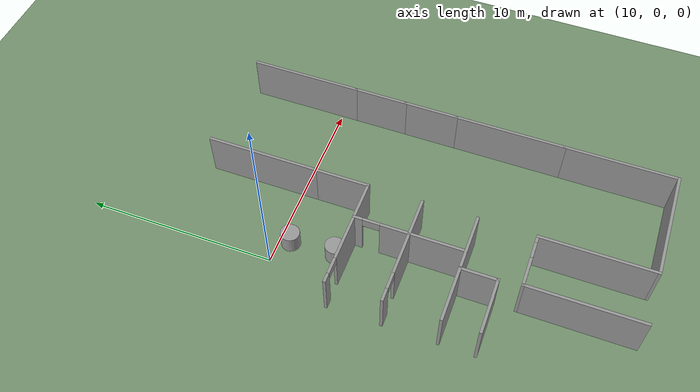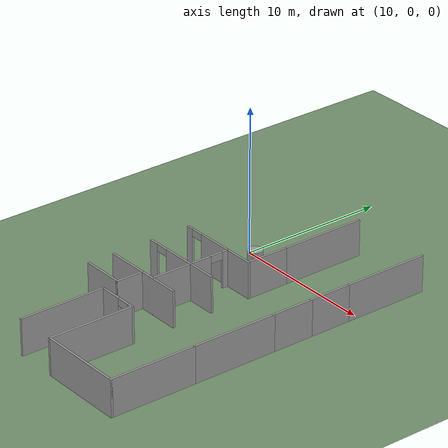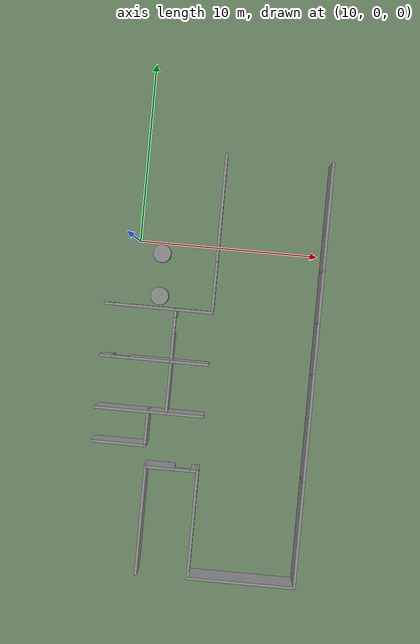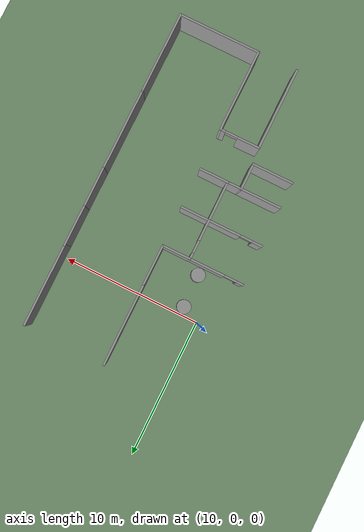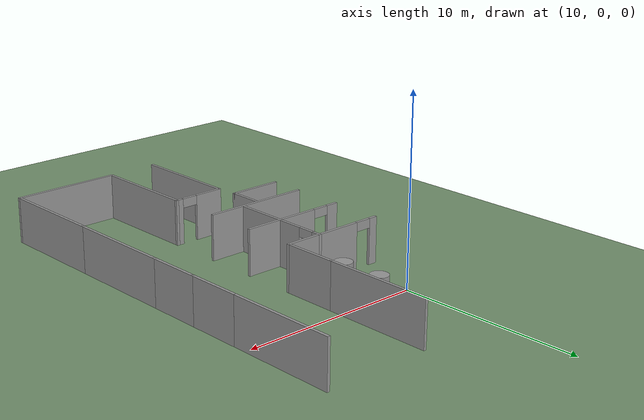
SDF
<sdf version="1.7">
 <world name="default">
  <model name="ground_plane">
   <static>1</static>
   <link name="link">
    <collision name="collision">
     <geometry><plane><normal>0 0 1</normal><size>600 600</size></plane></geometry>
     <surface>
      <contact><collide_bitmask>65535</collide_bitmask></contact>
      <friction><ode><mu>100</mu><mu2>50</mu2></ode></friction>
     </surface>
    </collision>
    <visual name="visual">
     <cast_shadows>0</cast_shadows>
     <geometry><plane><normal>0 0 1</normal><size>100 100</size></plane></geometry>
     <material><ambient>0.45 0.57 0.43 1</ambient><diffuse>0.45 0.57 0.43 1</diffuse></material>
    </visual>
   </link>
  </model>
  <model name="myhal_V3_2">
   <link name="Wall_326">
    <pose>20.475 0 0 0 0 -1.5708</pose>
    <visual name="Wall_326_Visual">
     <pose>0 0 1.25 0 -0 0</pose>
     <geometry><box><size>6 0.15 2.5</size></box></geometry>
     <material>
      <script><uri>file://media/materials/scripts/gazebo.material</uri><name>Gazebo/Grey</name></script>
      <ambient>1 1 1 1</ambient>
      <shader type="pixel"/>
     </material>
     <meta><layer>0</layer></meta>
    </visual>
    <collision name="Wall_326_Collision">
     <pose>0 0 1.25 0 -0 0</pose>
     <geometry><box><size>6 0.15 2.5</size></box></geometry>
     <surface>
      <friction>
       <ode><mu>1</mu><mu2>1</mu2><fdir1>0 0 0</fdir1><slip1>0</slip1><slip2>0</slip2></ode>
       <torsional>
        <coefficient>1</coefficient>
        <patch_radius>0</patch_radius>
        <surface_radius>0</surface_radius>
        <use_patch_radius>1</use_patch_radius>
        <ode><slip>0</slip></ode>
       </torsional>
      </friction>
      <bounce><restitution_coefficient>0</restitution_coefficient><threshold>1e+06</threshold></bounce>
      <contact>
       <collide_without_contact>0</collide_without_contact>
       <collide_without_contact_bitmask>1</collide_without_contact_bitmask>
       <collide_bitmask>1</collide_bitmask>
       <ode>
        <soft_cfm>0</soft_cfm>
        <soft_erp>0.2</soft_erp>
        <kp>1e+13</kp>
        <kd>1</kd>
        <max_vel>0.01</max_vel>
        <min_depth>0</min_depth>
       </ode>
       <bullet>
        <split_impulse>1</split_impulse>
        <split_impulse_penetration_threshold>-0.01</split_impulse_penetration_threshold>
        <soft_cfm>0</soft_cfm>
        <soft_erp>0.2</soft_erp>
        <kp>1e+13</kp>
        <kd>1</kd>
       </bullet>
      </contact>
     </surface>
    </collision>
   </link>
   <link name="Wall_327">
    <pose>20.475 -4.35 0 0 0 -1.5708</pose>
    <visual name="Wall_327_Visual">
     <pose>0 0 1.25 0 -0 0</pose>
     <geometry><box><size>3 0.15 2.5</size></box></geometry>
     <material>
      <script><uri>file://media/materials/scripts/gazebo.material</uri><name>Gazebo/Grey</name></script>
      <ambient>1 1 1 1</ambient>
      <shader type="pixel"/>
     </material>
     <meta><layer>0</layer></meta>
    </visual>
    <collision name="Wall_327_Collision">
     <pose>0 0 1.25 0 -0 0</pose>
     <geometry><box><size>3 0.15 2.5</size></box></geometry>
     <surface>
      <friction>
       <ode><mu>1</mu><mu2>1</mu2><fdir1>0 0 0</fdir1><slip1>0</slip1><slip2>0</slip2></ode>
       <torsional>
        <coefficient>1</coefficient>
        <patch_radius>0</patch_radius>
        <surface_radius>0</surface_radius>
        <use_patch_radius>1</use_patch_radius>
        <ode><slip>0</slip></ode>
       </torsional>
      </friction>
      <bounce><restitution_coefficient>0</restitution_coefficient><threshold>1e+06</threshold></bounce>
      <contact>
       <collide_without_contact>0</collide_without_contact>
       <collide_without_contact_bitmask>1</collide_without_contact_bitmask>
       <collide_bitmask>1</collide_bitmask>
       <ode>
        <soft_cfm>0</soft_cfm>
        <soft_erp>0.2</soft_erp>
        <kp>1e+13</kp>
        <kd>1</kd>
        <max_vel>0.01</max_vel>
        <min_depth>0</min_depth>
       </ode>
       <bullet>
        <split_impulse>1</split_impulse>
        <split_impulse_penetration_threshold>-0.01</split_impulse_penetration_threshold>
        <soft_cfm>0</soft_cfm>
        <soft_erp>0.2</soft_erp>
        <kp>1e+13</kp>
        <kd>1</kd>
       </bullet>
      </contact>
     </surface>
    </collision>
   </link>
   <link name="Wall_328">
    <pose>20.475 -7.2 0 0 0 -1.5708</pose>
    <visual name="Wall_328_Visual">
     <pose>0 0 1.25 0 -0 0</pose>
     <geometry><box><size>3 0.15 2.5</size></box></geometry>
     <material>
      <script><uri>file://media/materials/scripts/gazebo.material</uri><name>Gazebo/Grey</name></script>
      <ambient>1 1 1 1</ambient>
      <shader type="pixel"/>
     </material>
     <meta><layer>0</layer></meta>
    </visual>
    <collision name="Wall_328_Collision">
     <pose>0 0 1.25 0 -0 0</pose>
     <geometry><box><size>3 0.15 2.5</size></box></geometry>
     <surface>
      <friction>
       <ode><mu>1</mu><mu2>1</mu2><fdir1>0 0 0</fdir1><slip1>0</slip1><slip2>0</slip2></ode>
       <torsional>
        <coefficient>1</coefficient>
        <patch_radius>0</patch_radius>
        <surface_radius>0</surface_radius>
        <use_patch_radius>1</use_patch_radius>
        <ode><slip>0</slip></ode>
       </torsional>
      </friction>
      <bounce><restitution_coefficient>0</restitution_coefficient><threshold>1e+06</threshold></bounce>
      <contact>
       <collide_without_contact>0</collide_without_contact>
       <collide_without_contact_bitmask>1</collide_without_contact_bitmask>
       <collide_bitmask>1</collide_bitmask>
       <ode>
        <soft_cfm>0</soft_cfm>
        <soft_erp>0.2</soft_erp>
        <kp>1e+13</kp>
        <kd>1</kd>
        <max_vel>0.01</max_vel>
        <min_depth>0</min_depth>
       </ode>
       <bullet>
        <split_impulse>1</split_impulse>
        <split_impulse_penetration_threshold>-0.01</split_impulse_penetration_threshold>
        <soft_cfm>0</soft_cfm>
        <soft_erp>0.2</soft_erp>
        <kp>1e+13</kp>
        <kd>1</kd>
       </bullet>
      </contact>
     </surface>
    </collision>
   </link>
   <link name="Wall_330">
    <pose>20.475 -11.55 0 0 0 -1.5708</pose>
    <visual name="Wall_330_Visual">
     <pose>0 0 1.25 0 -0 0</pose>
     <geometry><box><size>6 0.15 2.5</size></box></geometry>
     <material>
      <script><uri>file://media/materials/scripts/gazebo.material</uri><name>Gazebo/Grey</name></script>
      <ambient>1 1 1 1</ambient>
      <shader type="pixel"/>
     </material>
     <meta><layer>0</layer></meta>
    </visual>
    <collision name="Wall_330_Collision">
     <pose>0 0 1.25 0 -0 0</pose>
     <geometry><box><size>6 0.15 2.5</size></box></geometry>
     <surface>
      <friction>
       <ode><mu>1</mu><mu2>1</mu2><fdir1>0 0 0</fdir1><slip1>0</slip1><slip2>0</slip2></ode>
       <torsional>
        <coefficient>1</coefficient>
        <patch_radius>0</patch_radius>
        <surface_radius>0</surface_radius>
        <use_patch_radius>1</use_patch_radius>
        <ode><slip>0</slip></ode>
       </torsional>
      </friction>
      <bounce><restitution_coefficient>0</restitution_coefficient><threshold>1e+06</threshold></bounce>
      <contact>
       <collide_without_contact>0</collide_without_contact>
       <collide_without_contact_bitmask>1</collide_without_contact_bitmask>
       <collide_bitmask>1</collide_bitmask>
       <ode>
        <soft_cfm>0</soft_cfm>
        <soft_erp>0.2</soft_erp>
        <kp>1e+13</kp>
        <kd>1</kd>
        <max_vel>0.01</max_vel>
        <min_depth>0</min_depth>
       </ode>
       <bullet>
        <split_impulse>1</split_impulse>
        <split_impulse_penetration_threshold>-0.01</split_impulse_penetration_threshold>
        <soft_cfm>0</soft_cfm>
        <soft_erp>0.2</soft_erp>
        <kp>1e+13</kp>
        <kd>1</kd>
       </bullet>
      </contact>
     </surface>
    </collision>
   </link>
   <link name="Wall_331">
    <pose>20.475 -17.4 0 0 0 -1.5708</pose>
    <visual name="Wall_331_Visual">
     <pose>0 0 1.25 0 -0 0</pose>
     <geometry><box><size>6 0.15 2.5</size></box></geometry>
     <material>
      <script><uri>file://media/materials/scripts/gazebo.material</uri><name>Gazebo/Grey</name></script>
      <ambient>1 1 1 1</ambient>
      <shader type="pixel"/>
     </material>
     <meta><layer>0</layer></meta>
    </visual>
    <collision name="Wall_331_Collision">
     <pose>0 0 1.25 0 -0 0</pose>
     <geometry><box><size>6 0.15 2.5</size></box></geometry>
     <surface>
      <friction>
       <ode><mu>1</mu><mu2>1</mu2><fdir1>0 0 0</fdir1><slip1>0</slip1><slip2>0</slip2></ode>
       <torsional>
        <coefficient>1</coefficient>
        <patch_radius>0</patch_radius>
        <surface_radius>0</surface_radius>
        <use_patch_radius>1</use_patch_radius>
        <ode><slip>0</slip></ode>
       </torsional>
      </friction>
      <bounce><restitution_coefficient>0</restitution_coefficient><threshold>1e+06</threshold></bounce>
      <contact>
       <collide_without_contact>0</collide_without_contact>
       <collide_without_contact_bitmask>1</collide_without_contact_bitmask>
       <collide_bitmask>1</collide_bitmask>
       <ode>
        <soft_cfm>0</soft_cfm>
        <soft_erp>0.2</soft_erp>
        <kp>1e+13</kp>
        <kd>1</kd>
        <max_vel>0.01</max_vel>
        <min_depth>0</min_depth>
       </ode>
       <bullet>
        <split_impulse>1</split_impulse>
        <split_impulse_penetration_threshold>-0.01</split_impulse_penetration_threshold>
        <soft_cfm>0</soft_cfm>
        <soft_erp>0.2</soft_erp>
        <kp>1e+13</kp>
        <kd>1</kd>
       </bullet>
      </contact>
     </surface>
    </collision>
   </link>
   <link name="Wall_474">
    <pose>14.625 0 0 0 0 -1.5708</pose>
    <visual name="Wall_474_Visual">
     <pose>0 0 1.25 0 -0 0</pose>
     <geometry><box><size>6 0.15 2.5</size></box></geometry>
     <material>
      <script><uri>file://media/materials/scripts/gazebo.material</uri><name>Gazebo/Grey</name></script>
      <ambient>1 1 1 1</ambient>
      <shader type="pixel"/>
     </material>
     <meta><layer>0</layer></meta>
    </visual>
    <collision name="Wall_474_Collision">
     <pose>0 0 1.25 0 -0 0</pose>
     <geometry><box><size>6 0.15 2.5</size></box></geometry>
     <surface>
      <friction>
       <ode><mu>1</mu><mu2>1</mu2><fdir1>0 0 0</fdir1><slip1>0</slip1><slip2>0</slip2></ode>
       <torsional>
        <coefficient>1</coefficient>
        <patch_radius>0</patch_radius>
        <surface_radius>0</surface_radius>
        <use_patch_radius>1</use_patch_radius>
        <ode><slip>0</slip></ode>
       </torsional>
      </friction>
      <bounce><restitution_coefficient>0</restitution_coefficient><threshold>1e+06</threshold></bounce>
      <contact>
       <collide_without_contact>0</collide_without_contact>
       <collide_without_contact_bitmask>1</collide_without_contact_bitmask>
       <collide_bitmask>1</collide_bitmask>
       <ode>
        <soft_cfm>0</soft_cfm>
        <soft_erp>0.2</soft_erp>
        <kp>1e+13</kp>
        <kd>1</kd>
        <max_vel>0.01</max_vel>
        <min_depth>0</min_depth>
       </ode>
       <bullet>
        <split_impulse>1</split_impulse>
        <split_impulse_penetration_threshold>-0.01</split_impulse_penetration_threshold>
        <soft_cfm>0</soft_cfm>
        <soft_erp>0.2</soft_erp>
        <kp>1e+13</kp>
        <kd>1</kd>
       </bullet>
      </contact>
     </surface>
    </collision>
   </link>
   <link name="Wall_475">
    <pose>14.625 -4.35 0 0 0 -1.5708</pose>
    <visual name="Wall_475_Visual">
     <pose>0 0 1.25 0 -0 0</pose>
     <geometry><box><size>3 0.15 2.5</size></box></geometry>
     <material>
      <script><uri>file://media/materials/scripts/gazebo.material</uri><name>Gazebo/Grey</name></script>
      <ambient>1 1 1 1</ambient>
      <shader type="pixel"/>
     </material>
     <meta><layer>0</layer></meta>
    </visual>
    <collision name="Wall_475_Collision">
     <pose>0 0 1.25 0 -0 0</pose>
     <geometry><box><size>3 0.15 2.5</size></box></geometry>
     <surface>
      <friction>
       <ode><mu>1</mu><mu2>1</mu2><fdir1>0 0 0</fdir1><slip1>0</slip1><slip2>0</slip2></ode>
       <torsional>
        <coefficient>1</coefficient>
        <patch_radius>0</patch_radius>
        <surface_radius>0</surface_radius>
        <use_patch_radius>1</use_patch_radius>
        <ode><slip>0</slip></ode>
       </torsional>
      </friction>
      <bounce><restitution_coefficient>0</restitution_coefficient><threshold>1e+06</threshold></bounce>
      <contact>
       <collide_without_contact>0</collide_without_contact>
       <collide_without_contact_bitmask>1</collide_without_contact_bitmask>
       <collide_bitmask>1</collide_bitmask>
       <ode>
        <soft_cfm>0</soft_cfm>
        <soft_erp>0.2</soft_erp>
        <kp>1e+13</kp>
        <kd>1</kd>
        <max_vel>0.01</max_vel>
        <min_depth>0</min_depth>
       </ode>
       <bullet>
        <split_impulse>1</split_impulse>
        <split_impulse_penetration_threshold>-0.01</split_impulse_penetration_threshold>
        <soft_cfm>0</soft_cfm>
        <soft_erp>0.2</soft_erp>
        <kp>1e+13</kp>
        <kd>1</kd>
       </bullet>
      </contact>
     </surface>
    </collision>
   </link>
   <link name="Wall_476">
    <pose>11.7 -5.775 0 0 -0 3.14159</pose>
    <visual name="Wall_476_Visual_0">
     <pose>-0.696561 0 1.25 0 -0 0</pose>
     <geometry><box><size>4.60688 0.15 2.5</size></box></geometry>
     <material>
      <script><uri>file://media/materials/scripts/gazebo.material</uri><name>Gazebo/Grey</name></script>
      <ambient>1 1 1 1</ambient>
      <shader type="pixel"/>
     </material>
     <meta><layer>0</layer></meta>
    </visual>
    <visual name="Wall_476_Visual_1">
     <pose>2.75344 0 1.25 0 -0 0</pose>
     <geometry><box><size>0.493122 0.15 2.5</size></box></geometry>
     <material>
      <script><uri>file://media/materials/scripts/gazebo.material</uri><name>Gazebo/Grey</name></script>
      <ambient>1 1 1 1</ambient>
      <shader type="pixel"/>
     </material>
     <meta><layer>0</layer></meta>
    </visual>
    <visual name="Wall_476_Visual_2">
     <pose>2.05688 0 2.25 0 -0 0</pose>
     <geometry><box><size>0.9 0.15 0.5</size></box></geometry>
     <material>
      <script><uri>file://media/materials/scripts/gazebo.material</uri><name>Gazebo/Grey</name></script>
      <ambient>1 1 1 1</ambient>
      <shader type="pixel"/>
     </material>
     <meta><layer>0</layer></meta>
    </visual>
    <collision name="Wall_476_Collision_0">
     <pose>-0.696561 0 1.25 0 -0 0</pose>
     <geometry><box><size>4.60688 0.15 2.5</size></box></geometry>
     <surface>
      <friction>
       <ode><mu>1</mu><mu2>1</mu2><fdir1>0 0 0</fdir1><slip1>0</slip1><slip2>0</slip2></ode>
       <torsional>
        <coefficient>1</coefficient>
        <patch_radius>0</patch_radius>
        <surface_radius>0</surface_radius>
        <use_patch_radius>1</use_patch_radius>
        <ode><slip>0</slip></ode>
       </torsional>
      </friction>
      <bounce><restitution_coefficient>0</restitution_coefficient><threshold>1e+06</threshold></bounce>
      <contact>
       <collide_without_contact>0</collide_without_contact>
       <collide_without_contact_bitmask>1</collide_without_contact_bitmask>
       <collide_bitmask>1</collide_bitmask>
       <ode>
        <soft_cfm>0</soft_cfm>
        <soft_erp>0.2</soft_erp>
        <kp>1e+13</kp>
        <kd>1</kd>
        <max_vel>0.01</max_vel>
        <min_depth>0</min_depth>
       </ode>
       <bullet>
        <split_impulse>1</split_impulse>
        <split_impulse_penetration_threshold>-0.01</split_impulse_penetration_threshold>
        <soft_cfm>0</soft_cfm>
        <soft_erp>0.2</soft_erp>
        <kp>1e+13</kp>
        <kd>1</kd>
       </bullet>
      </contact>
     </surface>
    </collision>
    <collision name="Wall_476_Collision_1">
     <pose>2.75344 0 1.25 0 -0 0</pose>
     <geometry><box><size>0.493122 0.15 2.5</size></box></geometry>
     <surface>
      <friction>
       <ode><mu>1</mu><mu2>1</mu2><fdir1>0 0 0</fdir1><slip1>0</slip1><slip2>0</slip2></ode>
       <torsional>
        <coefficient>1</coefficient>
        <patch_radius>0</patch_radius>
        <surface_radius>0</surface_radius>
        <use_patch_radius>1</use_patch_radius>
        <ode><slip>0</slip></ode>
       </torsional>
      </friction>
      <bounce><restitution_coefficient>0</restitution_coefficient><threshold>1e+06</threshold></bounce>
      <contact>
       <collide_without_contact>0</collide_without_contact>
       <collide_without_contact_bitmask>1</collide_without_contact_bitmask>
       <collide_bitmask>1</collide_bitmask>
       <ode>
        <soft_cfm>0</soft_cfm>
        <soft_erp>0.2</soft_erp>
        <kp>1e+13</kp>
        <kd>1</kd>
        <max_vel>0.01</max_vel>
        <min_depth>0</min_depth>
       </ode>
       <bullet>
        <split_impulse>1</split_impulse>
        <split_impulse_penetration_threshold>-0.01</split_impulse_penetration_threshold>
        <soft_cfm>0</soft_cfm>
        <soft_erp>0.2</soft_erp>
        <kp>1e+13</kp>
        <kd>1</kd>
       </bullet>
      </contact>
     </surface>
    </collision>
    <collision name="Wall_476_Collision_2">
     <pose>2.05688 0 2.25 0 -0 0</pose>
     <geometry><box><size>0.9 0.15 0.5</size></box></geometry>
     <surface>
      <friction>
       <ode><mu>1</mu><mu2>1</mu2><fdir1>0 0 0</fdir1><slip1>0</slip1><slip2>0</slip2></ode>
       <torsional>
        <coefficient>1</coefficient>
        <patch_radius>0</patch_radius>
        <surface_radius>0</surface_radius>
        <use_patch_radius>1</use_patch_radius>
        <ode><slip>0</slip></ode>
       </torsional>
      </friction>
      <bounce><restitution_coefficient>0</restitution_coefficient><threshold>1e+06</threshold></bounce>
      <contact>
       <collide_without_contact>0</collide_without_contact>
       <collide_without_contact_bitmask>1</collide_without_contact_bitmask>
       <collide_bitmask>1</collide_bitmask>
       <ode>
        <soft_cfm>0</soft_cfm>
        <soft_erp>0.2</soft_erp>
        <kp>1e+13</kp>
        <kd>1</kd>
        <max_vel>0.01</max_vel>
        <min_depth>0</min_depth>
       </ode>
       <bullet>
        <split_impulse>1</split_impulse>
        <split_impulse_penetration_threshold>-0.01</split_impulse_penetration_threshold>
        <soft_cfm>0</soft_cfm>
        <soft_erp>0.2</soft_erp>
        <kp>1e+13</kp>
        <kd>1</kd>
       </bullet>
      </contact>
     </surface>
    </collision>
   </link>
   <link name="Wall_507">
    <pose>11.7 -8.625 0 0 -0 0</pose>
    <visual name="Wall_507_Visual_0">
     <pose>-2.65028 0 1.25 0 -0 0</pose>
     <geometry><box><size>0.699436 0.15 2.5</size></box></geometry>
     <material>
      <script><uri>file://media/materials/scripts/gazebo.material</uri><name>Gazebo/Grey</name></script>
      <ambient>1 1 1 1</ambient>
      <shader type="pixel"/>
     </material>
     <meta><layer>0</layer></meta>
    </visual>
    <visual name="Wall_507_Visual_1">
     <pose>0.799718 0 1.25 0 -0 0</pose>
     <geometry><box><size>4.40056 0.15 2.5</size></box></geometry>
     <material>
      <script><uri>file://media/materials/scripts/gazebo.material</uri><name>Gazebo/Grey</name></script>
      <ambient>1 1 1 1</ambient>
      <shader type="pixel"/>
     </material>
     <meta><layer>0</layer></meta>
    </visual>
    <visual name="Wall_507_Visual_2">
     <pose>-1.85056 0 2.25 0 -0 0</pose>
     <geometry><box><size>0.9 0.15 0.5</size></box></geometry>
     <material>
      <script><uri>file://media/materials/scripts/gazebo.material</uri><name>Gazebo/Grey</name></script>
      <ambient>1 1 1 1</ambient>
      <shader type="pixel"/>
     </material>
     <meta><layer>0</layer></meta>
    </visual>
    <collision name="Wall_507_Collision_0">
     <pose>-2.65028 0 1.25 0 -0 0</pose>
     <geometry><box><size>0.699436 0.15 2.5</size></box></geometry>
     <surface>
      <friction>
       <ode><mu>1</mu><mu2>1</mu2><fdir1>0 0 0</fdir1><slip1>0</slip1><slip2>0</slip2></ode>
       <torsional>
        <coefficient>1</coefficient>
        <patch_radius>0</patch_radius>
        <surface_radius>0</surface_radius>
        <use_patch_radius>1</use_patch_radius>
        <ode><slip>0</slip></ode>
       </torsional>
      </friction>
      <bounce><restitution_coefficient>0</restitution_coefficient><threshold>1e+06</threshold></bounce>
      <contact>
       <collide_without_contact>0</collide_without_contact>
       <collide_without_contact_bitmask>1</collide_without_contact_bitmask>
       <collide_bitmask>1</collide_bitmask>
       <ode>
        <soft_cfm>0</soft_cfm>
        <soft_erp>0.2</soft_erp>
        <kp>1e+13</kp>
        <kd>1</kd>
        <max_vel>0.01</max_vel>
        <min_depth>0</min_depth>
       </ode>
       <bullet>
        <split_impulse>1</split_impulse>
        <split_impulse_penetration_threshold>-0.01</split_impulse_penetration_threshold>
        <soft_cfm>0</soft_cfm>
        <soft_erp>0.2</soft_erp>
        <kp>1e+13</kp>
        <kd>1</kd>
       </bullet>
      </contact>
     </surface>
    </collision>
    <collision name="Wall_507_Collision_1">
     <pose>0.799718 0 1.25 0 -0 0</pose>
     <geometry><box><size>4.40056 0.15 2.5</size></box></geometry>
     <surface>
      <friction>
       <ode><mu>1</mu><mu2>1</mu2><fdir1>0 0 0</fdir1><slip1>0</slip1><slip2>0</slip2></ode>
       <torsional>
        <coefficient>1</coefficient>
        <patch_radius>0</patch_radius>
        <surface_radius>0</surface_radius>
        <use_patch_radius>1</use_patch_radius>
        <ode><slip>0</slip></ode>
       </torsional>
      </friction>
      <bounce><restitution_coefficient>0</restitution_coefficient><threshold>1e+06</threshold></bounce>
      <contact>
       <collide_without_contact>0</collide_without_contact>
       <collide_without_contact_bitmask>1</collide_without_contact_bitmask>
       <collide_bitmask>1</collide_bitmask>
       <ode>
        <soft_cfm>0</soft_cfm>
        <soft_erp>0.2</soft_erp>
        <kp>1e+13</kp>
        <kd>1</kd>
        <max_vel>0.01</max_vel>
        <min_depth>0</min_depth>
       </ode>
       <bullet>
        <split_impulse>1</split_impulse>
        <split_impulse_penetration_threshold>-0.01</split_impulse_penetration_threshold>
        <soft_cfm>0</soft_cfm>
        <soft_erp>0.2</soft_erp>
        <kp>1e+13</kp>
        <kd>1</kd>
       </bullet>
      </contact>
     </surface>
    </collision>
    <collision name="Wall_507_Collision_2">
     <pose>-1.85056 0 2.25 0 -0 0</pose>
     <geometry><box><size>0.9 0.15 0.5</size></box></geometry>
     <surface>
      <friction>
       <ode><mu>1</mu><mu2>1</mu2><fdir1>0 0 0</fdir1><slip1>0</slip1><slip2>0</slip2></ode>
       <torsional>
        <coefficient>1</coefficient>
        <patch_radius>0</patch_radius>
        <surface_radius>0</surface_radius>
        <use_patch_radius>1</use_patch_radius>
        <ode><slip>0</slip></ode>
       </torsional>
      </friction>
      <bounce><restitution_coefficient>0</restitution_coefficient><threshold>1e+06</threshold></bounce>
      <contact>
       <collide_without_contact>0</collide_without_contact>
       <collide_without_contact_bitmask>1</collide_without_contact_bitmask>
       <collide_bitmask>1</collide_bitmask>
       <ode>
        <soft_cfm>0</soft_cfm>
        <soft_erp>0.2</soft_erp>
        <kp>1e+13</kp>
        <kd>1</kd>
        <max_vel>0.01</max_vel>
        <min_depth>0</min_depth>
       </ode>
       <bullet>
        <split_impulse>1</split_impulse>
        <split_impulse_penetration_threshold>-0.01</split_impulse_penetration_threshold>
        <soft_cfm>0</soft_cfm>
        <soft_erp>0.2</soft_erp>
        <kp>1e+13</kp>
        <kd>1</kd>
       </bullet>
      </contact>
     </surface>
    </collision>
   </link>
   <link name="Wall_521">
    <pose>17.55 -20.325 0 0 -0 3.14159</pose>
    <visual name="Wall_521_Visual">
     <pose>0 0 1.25 0 -0 0</pose>
     <geometry><box><size>6 0.15 2.5</size></box></geometry>
     <material>
      <script><uri>file://media/materials/scripts/gazebo.material</uri><name>Gazebo/Grey</name></script>
      <ambient>1 1 1 1</ambient>
      <shader type="pixel"/>
     </material>
     <meta><layer>0</layer></meta>
    </visual>
    <collision name="Wall_521_Collision">
     <pose>0 0 1.25 0 -0 0</pose>
     <geometry><box><size>6 0.15 2.5</size></box></geometry>
     <surface>
      <friction>
       <ode><mu>1</mu><mu2>1</mu2><fdir1>0 0 0</fdir1><slip1>0</slip1><slip2>0</slip2></ode>
       <torsional>
        <coefficient>1</coefficient>
        <patch_radius>0</patch_radius>
        <surface_radius>0</surface_radius>
        <use_patch_radius>1</use_patch_radius>
        <ode><slip>0</slip></ode>
       </torsional>
      </friction>
      <bounce><restitution_coefficient>0</restitution_coefficient><threshold>1e+06</threshold></bounce>
      <contact>
       <collide_without_contact>0</collide_without_contact>
       <collide_without_contact_bitmask>1</collide_without_contact_bitmask>
       <collide_bitmask>1</collide_bitmask>
       <ode>
        <soft_cfm>0</soft_cfm>
        <soft_erp>0.2</soft_erp>
        <kp>1e+13</kp>
        <kd>1</kd>
        <max_vel>0.01</max_vel>
        <min_depth>0</min_depth>
       </ode>
       <bullet>
        <split_impulse>1</split_impulse>
        <split_impulse_penetration_threshold>-0.01</split_impulse_penetration_threshold>
        <soft_cfm>0</soft_cfm>
        <soft_erp>0.2</soft_erp>
        <kp>1e+13</kp>
        <kd>1</kd>
       </bullet>
      </contact>
     </surface>
    </collision>
   </link>
   <link name="Wall_522">
    <pose>14.625 -17.4 0 0 -0 1.5708</pose>
    <visual name="Wall_522_Visual">
     <pose>0 0 1.25 0 -0 0</pose>
     <geometry><box><size>6 0.15 2.5</size></box></geometry>
     <material>
      <script><uri>file://media/materials/scripts/gazebo.material</uri><name>Gazebo/Grey</name></script>
      <ambient>1 1 1 1</ambient>
      <shader type="pixel"/>
     </material>
     <meta><layer>0</layer></meta>
    </visual>
    <collision name="Wall_522_Collision">
     <pose>0 0 1.25 0 -0 0</pose>
     <geometry><box><size>6 0.15 2.5</size></box></geometry>
     <surface>
      <friction>
       <ode><mu>1</mu><mu2>1</mu2><fdir1>0 0 0</fdir1><slip1>0</slip1><slip2>0</slip2></ode>
       <torsional>
        <coefficient>1</coefficient>
        <patch_radius>0</patch_radius>
        <surface_radius>0</surface_radius>
        <use_patch_radius>1</use_patch_radius>
        <ode><slip>0</slip></ode>
       </torsional>
      </friction>
      <bounce><restitution_coefficient>0</restitution_coefficient><threshold>1e+06</threshold></bounce>
      <contact>
       <collide_without_contact>0</collide_without_contact>
       <collide_without_contact_bitmask>1</collide_without_contact_bitmask>
       <collide_bitmask>1</collide_bitmask>
       <ode>
        <soft_cfm>0</soft_cfm>
        <soft_erp>0.2</soft_erp>
        <kp>1e+13</kp>
        <kd>1</kd>
        <max_vel>0.01</max_vel>
        <min_depth>0</min_depth>
       </ode>
       <bullet>
        <split_impulse>1</split_impulse>
        <split_impulse_penetration_threshold>-0.01</split_impulse_penetration_threshold>
        <soft_cfm>0</soft_cfm>
        <soft_erp>0.2</soft_erp>
        <kp>1e+13</kp>
        <kd>1</kd>
       </bullet>
      </contact>
     </surface>
    </collision>
   </link>
   <link name="Wall_523">
    <pose>13.2 -14.475 0 0 -0 3.14159</pose>
    <visual name="Wall_523_Visual_0">
     <pose>-1.27635 0 1.25 0 -0 0</pose>
     <geometry><box><size>0.447294 0.15 2.5</size></box></geometry>
     <material>
      <script><uri>file://media/materials/scripts/gazebo.material</uri><name>Gazebo/Grey</name></script>
      <ambient>1 1 1 1</ambient>
      <shader type="pixel"/>
     </material>
     <meta><layer>0</layer></meta>
    </visual>
    <visual name="Wall_523_Visual_1">
     <pose>0.673647 0 1.25 0 -0 0</pose>
     <geometry><box><size>1.65271 0.15 2.5</size></box></geometry>
     <material>
      <script><uri>file://media/materials/scripts/gazebo.material</uri><name>Gazebo/Grey</name></script>
      <ambient>1 1 1 1</ambient>
      <shader type="pixel"/>
     </material>
     <meta><layer>0</layer></meta>
    </visual>
    <visual name="Wall_523_Visual_2">
     <pose>-0.602706 0 2.25 0 -0 0</pose>
     <geometry><box><size>0.9 0.15 0.5</size></box></geometry>
     <material>
      <script><uri>file://media/materials/scripts/gazebo.material</uri><name>Gazebo/Grey</name></script>
      <ambient>1 1 1 1</ambient>
      <shader type="pixel"/>
     </material>
     <meta><layer>0</layer></meta>
    </visual>
    <collision name="Wall_523_Collision_0">
     <pose>-1.27635 0 1.25 0 -0 0</pose>
     <geometry><box><size>0.447294 0.15 2.5</size></box></geometry>
     <surface>
      <friction>
       <ode><mu>1</mu><mu2>1</mu2><fdir1>0 0 0</fdir1><slip1>0</slip1><slip2>0</slip2></ode>
       <torsional>
        <coefficient>1</coefficient>
        <patch_radius>0</patch_radius>
        <surface_radius>0</surface_radius>
        <use_patch_radius>1</use_patch_radius>
        <ode><slip>0</slip></ode>
       </torsional>
      </friction>
      <bounce><restitution_coefficient>0</restitution_coefficient><threshold>1e+06</threshold></bounce>
      <contact>
       <collide_without_contact>0</collide_without_contact>
       <collide_without_contact_bitmask>1</collide_without_contact_bitmask>
       <collide_bitmask>1</collide_bitmask>
       <ode>
        <soft_cfm>0</soft_cfm>
        <soft_erp>0.2</soft_erp>
        <kp>1e+13</kp>
        <kd>1</kd>
        <max_vel>0.01</max_vel>
        <min_depth>0</min_depth>
       </ode>
       <bullet>
        <split_impulse>1</split_impulse>
        <split_impulse_penetration_threshold>-0.01</split_impulse_penetration_threshold>
        <soft_cfm>0</soft_cfm>
        <soft_erp>0.2</soft_erp>
        <kp>1e+13</kp>
        <kd>1</kd>
       </bullet>
      </contact>
     </surface>
    </collision>
    <collision name="Wall_523_Collision_1">
     <pose>0.673647 0 1.25 0 -0 0</pose>
     <geometry><box><size>1.65271 0.15 2.5</size></box></geometry>
     <surface>
      <friction>
       <ode><mu>1</mu><mu2>1</mu2><fdir1>0 0 0</fdir1><slip1>0</slip1><slip2>0</slip2></ode>
       <torsional>
        <coefficient>1</coefficient>
        <patch_radius>0</patch_radius>
        <surface_radius>0</surface_radius>
        <use_patch_radius>1</use_patch_radius>
        <ode><slip>0</slip></ode>
       </torsional>
      </friction>
      <bounce><restitution_coefficient>0</restitution_coefficient><threshold>1e+06</threshold></bounce>
      <contact>
       <collide_without_contact>0</collide_without_contact>
       <collide_without_contact_bitmask>1</collide_without_contact_bitmask>
       <collide_bitmask>1</collide_bitmask>
       <ode>
        <soft_cfm>0</soft_cfm>
        <soft_erp>0.2</soft_erp>
        <kp>1e+13</kp>
        <kd>1</kd>
        <max_vel>0.01</max_vel>
        <min_depth>0</min_depth>
       </ode>
       <bullet>
        <split_impulse>1</split_impulse>
        <split_impulse_penetration_threshold>-0.01</split_impulse_penetration_threshold>
        <soft_cfm>0</soft_cfm>
        <soft_erp>0.2</soft_erp>
        <kp>1e+13</kp>
        <kd>1</kd>
       </bullet>
      </contact>
     </surface>
    </collision>
    <collision name="Wall_523_Collision_2">
     <pose>-0.602706 0 2.25 0 -0 0</pose>
     <geometry><box><size>0.9 0.15 0.5</size></box></geometry>
     <surface>
      <friction>
       <ode><mu>1</mu><mu2>1</mu2><fdir1>0 0 0</fdir1><slip1>0</slip1><slip2>0</slip2></ode>
       <torsional>
        <coefficient>1</coefficient>
        <patch_radius>0</patch_radius>
        <surface_radius>0</surface_radius>
        <use_patch_radius>1</use_patch_radius>
        <ode><slip>0</slip></ode>
       </torsional>
      </friction>
      <bounce><restitution_coefficient>0</restitution_coefficient><threshold>1e+06</threshold></bounce>
      <contact>
       <collide_without_contact>0</collide_without_contact>
       <collide_without_contact_bitmask>1</collide_without_contact_bitmask>
       <collide_bitmask>1</collide_bitmask>
       <ode>
        <soft_cfm>0</soft_cfm>
        <soft_erp>0.2</soft_erp>
        <kp>1e+13</kp>
        <kd>1</kd>
        <max_vel>0.01</max_vel>
        <min_depth>0</min_depth>
       </ode>
       <bullet>
        <split_impulse>1</split_impulse>
        <split_impulse_penetration_threshold>-0.01</split_impulse_penetration_threshold>
        <soft_cfm>0</soft_cfm>
        <soft_erp>0.2</soft_erp>
        <kp>1e+13</kp>
        <kd>1</kd>
       </bullet>
      </contact>
     </surface>
    </collision>
   </link>
   <link name="Wall_524">
    <pose>11.775 -17.4 0 0 0 -1.5708</pose>
    <visual name="Wall_524_Visual">
     <pose>0 0 1.25 0 -0 0</pose>
     <geometry><box><size>6 0.15 2.5</size></box></geometry>
     <material>
      <script><uri>file://media/materials/scripts/gazebo.material</uri><name>Gazebo/Grey</name></script>
      <ambient>1 1 1 1</ambient>
      <shader type="pixel"/>
     </material>
     <meta><layer>0</layer></meta>
    </visual>
    <collision name="Wall_524_Collision">
     <pose>0 0 1.25 0 -0 0</pose>
     <geometry><box><size>6 0.15 2.5</size></box></geometry>
     <surface>
      <friction>
       <ode><mu>1</mu><mu2>1</mu2><fdir1>0 0 0</fdir1><slip1>0</slip1><slip2>0</slip2></ode>
       <torsional>
        <coefficient>1</coefficient>
        <patch_radius>0</patch_radius>
        <surface_radius>0</surface_radius>
        <use_patch_radius>1</use_patch_radius>
        <ode><slip>0</slip></ode>
       </torsional>
      </friction>
      <bounce><restitution_coefficient>0</restitution_coefficient><threshold>1e+06</threshold></bounce>
      <contact>
       <collide_without_contact>0</collide_without_contact>
       <collide_without_contact_bitmask>1</collide_without_contact_bitmask>
       <collide_bitmask>1</collide_bitmask>
       <ode>
        <soft_cfm>0</soft_cfm>
        <soft_erp>0.2</soft_erp>
        <kp>1e+13</kp>
        <kd>1</kd>
        <max_vel>0.01</max_vel>
        <min_depth>0</min_depth>
       </ode>
       <bullet>
        <split_impulse>1</split_impulse>
        <split_impulse_penetration_threshold>-0.01</split_impulse_penetration_threshold>
        <soft_cfm>0</soft_cfm>
        <soft_erp>0.2</soft_erp>
        <kp>1e+13</kp>
        <kd>1</kd>
       </bullet>
      </contact>
     </surface>
    </collision>
   </link>
   <link name="Wall_527">
    <pose>11.7 -11.475 0 0 -0 3.14159</pose>
    <visual name="Wall_527_Visual">
     <pose>0 0 1.25 0 -0 0</pose>
     <geometry><box><size>6 0.15 2.5</size></box></geometry>
     <material>
      <script><uri>file://media/materials/scripts/gazebo.material</uri><name>Gazebo/Grey</name></script>
      <ambient>1 1 1 1</ambient>
      <shader type="pixel"/>
     </material>
     <meta><layer>0</layer></meta>
    </visual>
    <collision name="Wall_527_Collision">
     <pose>0 0 1.25 0 -0 0</pose>
     <geometry><box><size>6 0.15 2.5</size></box></geometry>
     <surface>
      <friction>
       <ode><mu>1</mu><mu2>1</mu2><fdir1>0 0 0</fdir1><slip1>0</slip1><slip2>0</slip2></ode>
       <torsional>
        <coefficient>1</coefficient>
        <patch_radius>0</patch_radius>
        <surface_radius>0</surface_radius>
        <use_patch_radius>1</use_patch_radius>
        <ode><slip>0</slip></ode>
       </torsional>
      </friction>
      <bounce><restitution_coefficient>0</restitution_coefficient><threshold>1e+06</threshold></bounce>
      <contact>
       <collide_without_contact>0</collide_without_contact>
       <collide_without_contact_bitmask>1</collide_without_contact_bitmask>
       <collide_bitmask>1</collide_bitmask>
       <ode>
        <soft_cfm>0</soft_cfm>
        <soft_erp>0.2</soft_erp>
        <kp>1e+13</kp>
        <kd>1</kd>
        <max_vel>0.01</max_vel>
        <min_depth>0</min_depth>
       </ode>
       <bullet>
        <split_impulse>1</split_impulse>
        <split_impulse_penetration_threshold>-0.01</split_impulse_penetration_threshold>
        <soft_cfm>0</soft_cfm>
        <soft_erp>0.2</soft_erp>
        <kp>1e+13</kp>
        <kd>1</kd>
       </bullet>
      </contact>
     </surface>
    </collision>
   </link>
   <link name="Wall_530">
    <pose>12.625 -10.05 0 0 -0 1.5708</pose>
    <visual name="Wall_530_Visual">
     <pose>0 0 1.25 0 -0 0</pose>
     <geometry><box><size>3 0.15 2.5</size></box></geometry>
     <material>
      <script><uri>file://media/materials/scripts/gazebo.material</uri><name>Gazebo/Grey</name></script>
      <ambient>1 1 1 1</ambient>
      <shader type="pixel"/>
     </material>
     <meta><layer>0</layer></meta>
    </visual>
    <collision name="Wall_530_Collision">
     <pose>0 0 1.25 0 -0 0</pose>
     <geometry><box><size>3 0.15 2.5</size></box></geometry>
     <surface>
      <friction>
       <ode><mu>1</mu><mu2>1</mu2><fdir1>0 0 0</fdir1><slip1>0</slip1><slip2>0</slip2></ode>
       <torsional>
        <coefficient>1</coefficient>
        <patch_radius>0</patch_radius>
        <surface_radius>0</surface_radius>
        <use_patch_radius>1</use_patch_radius>
        <ode><slip>0</slip></ode>
       </torsional>
      </friction>
      <bounce><restitution_coefficient>0</restitution_coefficient><threshold>1e+06</threshold></bounce>
      <contact>
       <collide_without_contact>0</collide_without_contact>
       <collide_without_contact_bitmask>1</collide_without_contact_bitmask>
       <collide_bitmask>1</collide_bitmask>
       <ode>
        <soft_cfm>0</soft_cfm>
        <soft_erp>0.2</soft_erp>
        <kp>1e+13</kp>
        <kd>1</kd>
        <max_vel>0.01</max_vel>
        <min_depth>0</min_depth>
       </ode>
       <bullet>
        <split_impulse>1</split_impulse>
        <split_impulse_penetration_threshold>-0.01</split_impulse_penetration_threshold>
        <soft_cfm>0</soft_cfm>
        <soft_erp>0.2</soft_erp>
        <kp>1e+13</kp>
        <kd>1</kd>
       </bullet>
      </contact>
     </surface>
    </collision>
   </link>
   <link name="Wall_533">
    <pose>10.2 -13.325 0 0 -0 0</pose>
    <visual name="Wall_533_Visual">
     <pose>0 0 1.25 0 -0 0</pose>
     <geometry><box><size>3 0.15 2.5</size></box></geometry>
     <material>
      <script><uri>file://media/materials/scripts/gazebo.material</uri><name>Gazebo/Grey</name></script>
      <ambient>1 1 1 1</ambient>
      <shader type="pixel"/>
     </material>
     <meta><layer>0</layer></meta>
    </visual>
    <collision name="Wall_533_Collision">
     <pose>0 0 1.25 0 -0 0</pose>
     <geometry><box><size>3 0.15 2.5</size></box></geometry>
     <surface>
      <friction>
       <ode><mu>1</mu><mu2>1</mu2><fdir1>0 0 0</fdir1><slip1>0</slip1><slip2>0</slip2></ode>
       <torsional>
        <coefficient>1</coefficient>
        <patch_radius>0</patch_radius>
        <surface_radius>0</surface_radius>
        <use_patch_radius>1</use_patch_radius>
        <ode><slip>0</slip></ode>
       </torsional>
      </friction>
      <bounce><restitution_coefficient>0</restitution_coefficient><threshold>1e+06</threshold></bounce>
      <contact>
       <collide_without_contact>0</collide_without_contact>
       <collide_without_contact_bitmask>1</collide_without_contact_bitmask>
       <collide_bitmask>1</collide_bitmask>
       <ode>
        <soft_cfm>0</soft_cfm>
        <soft_erp>0.2</soft_erp>
        <kp>1e+13</kp>
        <kd>1</kd>
        <max_vel>0.01</max_vel>
        <min_depth>0</min_depth>
       </ode>
       <bullet>
        <split_impulse>1</split_impulse>
        <split_impulse_penetration_threshold>-0.01</split_impulse_penetration_threshold>
        <soft_cfm>0</soft_cfm>
        <soft_erp>0.2</soft_erp>
        <kp>1e+13</kp>
        <kd>1</kd>
       </bullet>
      </contact>
     </surface>
    </collision>
   </link>
   <link name="Wall_534">
    <pose>11.625 -12.4 0 0 -0 1.5708</pose>
    <visual name="Wall_534_Visual">
     <pose>0 0 1.25 0 -0 0</pose>
     <geometry><box><size>2 0.15 2.5</size></box></geometry>
     <material>
      <script><uri>file://media/materials/scripts/gazebo.material</uri><name>Gazebo/Grey</name></script>
      <ambient>1 1 1 1</ambient>
      <shader type="pixel"/>
     </material>
     <meta><layer>0</layer></meta>
    </visual>
    <collision name="Wall_534_Collision">
     <pose>0 0 1.25 0 -0 0</pose>
     <geometry><box><size>2 0.15 2.5</size></box></geometry>
     <surface>
      <friction>
       <ode><mu>1</mu><mu2>1</mu2><fdir1>0 0 0</fdir1><slip1>0</slip1><slip2>0</slip2></ode>
       <torsional>
        <coefficient>1</coefficient>
        <patch_radius>0</patch_radius>
        <surface_radius>0</surface_radius>
        <use_patch_radius>1</use_patch_radius>
        <ode><slip>0</slip></ode>
       </torsional>
      </friction>
      <bounce><restitution_coefficient>0</restitution_coefficient><threshold>1e+06</threshold></bounce>
      <contact>
       <collide_without_contact>0</collide_without_contact>
       <collide_without_contact_bitmask>1</collide_without_contact_bitmask>
       <collide_bitmask>1</collide_bitmask>
       <ode>
        <soft_cfm>0</soft_cfm>
        <soft_erp>0.2</soft_erp>
        <kp>1e+13</kp>
        <kd>1</kd>
        <max_vel>0.01</max_vel>
        <min_depth>0</min_depth>
       </ode>
       <bullet>
        <split_impulse>1</split_impulse>
        <split_impulse_penetration_threshold>-0.01</split_impulse_penetration_threshold>
        <soft_cfm>0</soft_cfm>
        <soft_erp>0.2</soft_erp>
        <kp>1e+13</kp>
        <kd>1</kd>
       </bullet>
      </contact>
     </surface>
    </collision>
   </link>
   <link name="Wall_536">
    <pose>12.625 -7.2 0 0 -0 1.5708</pose>
    <visual name="Wall_536_Visual_0">
     <pose>-0.714799 0 1.25 0 -0 0</pose>
     <geometry><box><size>1.5704 0.15 2.5</size></box></geometry>
     <material>
      <script><uri>file://media/materials/scripts/gazebo.material</uri><name>Gazebo/Grey</name></script>
      <ambient>1 1 1 1</ambient>
      <shader type="pixel"/>
     </material>
     <meta><layer>0</layer></meta>
    </visual>
    <visual name="Wall_536_Visual_1">
     <pose>1.2352 0 1.25 0 -0 0</pose>
     <geometry><box><size>0.529598 0.15 2.5</size></box></geometry>
     <material>
      <script><uri>file://media/materials/scripts/gazebo.material</uri><name>Gazebo/Grey</name></script>
      <ambient>1 1 1 1</ambient>
      <shader type="pixel"/>
     </material>
     <meta><layer>0</layer></meta>
    </visual>
    <visual name="Wall_536_Visual_2">
     <pose>0.520402 0 2.25 0 -0 0</pose>
     <geometry><box><size>0.9 0.15 0.5</size></box></geometry>
     <material>
      <script><uri>file://media/materials/scripts/gazebo.material</uri><name>Gazebo/Grey</name></script>
      <ambient>1 1 1 1</ambient>
      <shader type="pixel"/>
     </material>
     <meta><layer>0</layer></meta>
    </visual>
    <collision name="Wall_536_Collision_1">
     <pose>1.2352 0 1.25 0 -0 0</pose>
     <geometry><box><size>0.529598 0.15 2.5</size></box></geometry>
     <surface>
      <friction>
       <ode><mu>1</mu><mu2>1</mu2><fdir1>0 0 0</fdir1><slip1>0</slip1><slip2>0</slip2></ode>
       <torsional>
        <coefficient>1</coefficient>
        <patch_radius>0</patch_radius>
        <surface_radius>0</surface_radius>
        <use_patch_radius>1</use_patch_radius>
        <ode><slip>0</slip></ode>
       </torsional>
      </friction>
      <bounce><restitution_coefficient>0</restitution_coefficient><threshold>1e+06</threshold></bounce>
      <contact>
       <collide_without_contact>0</collide_without_contact>
       <collide_without_contact_bitmask>1</collide_without_contact_bitmask>
       <collide_bitmask>1</collide_bitmask>
       <ode>
        <soft_cfm>0</soft_cfm>
        <soft_erp>0.2</soft_erp>
        <kp>1e+13</kp>
        <kd>1</kd>
        <max_vel>0.01</max_vel>
        <min_depth>0</min_depth>
       </ode>
       <bullet>
        <split_impulse>1</split_impulse>
        <split_impulse_penetration_threshold>-0.01</split_impulse_penetration_threshold>
        <soft_cfm>0</soft_cfm>
        <soft_erp>0.2</soft_erp>
        <kp>1e+13</kp>
        <kd>1</kd>
       </bullet>
      </contact>
     </surface>
    </collision>
    <collision name="Wall_536_Collision_0">
     <pose>-0.714799 0 1.25 0 -0 0</pose>
     <geometry><box><size>1.5704 0.15 2.5</size></box></geometry>
     <surface>
      <friction>
       <ode><mu>1</mu><mu2>1</mu2><fdir1>0 0 0</fdir1><slip1>0</slip1><slip2>0</slip2></ode>
       <torsional>
        <coefficient>1</coefficient>
        <patch_radius>0</patch_radius>
        <surface_radius>0</surface_radius>
        <use_patch_radius>1</use_patch_radius>
        <ode><slip>0</slip></ode>
       </torsional>
      </friction>
      <bounce><restitution_coefficient>0</restitution_coefficient><threshold>1e+06</threshold></bounce>
      <contact>
       <collide_without_contact>0</collide_without_contact>
       <collide_without_contact_bitmask>1</collide_without_contact_bitmask>
       <collide_bitmask>1</collide_bitmask>
       <ode>
        <soft_cfm>0</soft_cfm>
        <soft_erp>0.2</soft_erp>
        <kp>1e+13</kp>
        <kd>1</kd>
        <max_vel>0.01</max_vel>
        <min_depth>0</min_depth>
       </ode>
       <bullet>
        <split_impulse>1</split_impulse>
        <split_impulse_penetration_threshold>-0.01</split_impulse_penetration_threshold>
        <soft_cfm>0</soft_cfm>
        <soft_erp>0.2</soft_erp>
        <kp>1e+13</kp>
        <kd>1</kd>
       </bullet>
      </contact>
     </surface>
    </collision>
    <collision name="Wall_536_Collision_2">
     <pose>0.520402 0 2.25 0 -0 0</pose>
     <geometry><box><size>0.9 0.15 0.5</size></box></geometry>
     <surface>
      <friction>
       <ode><mu>1</mu><mu2>1</mu2><fdir1>0 0 0</fdir1><slip1>0</slip1><slip2>0</slip2></ode>
       <torsional>
        <coefficient>1</coefficient>
        <patch_radius>0</patch_radius>
        <surface_radius>0</surface_radius>
        <use_patch_radius>1</use_patch_radius>
        <ode><slip>0</slip></ode>
       </torsional>
      </friction>
      <bounce><restitution_coefficient>0</restitution_coefficient><threshold>1e+06</threshold></bounce>
      <contact>
       <collide_without_contact>0</collide_without_contact>
       <collide_without_contact_bitmask>1</collide_without_contact_bitmask>
       <collide_bitmask>1</collide_bitmask>
       <ode>
        <soft_cfm>0</soft_cfm>
        <soft_erp>0.2</soft_erp>
        <kp>1e+13</kp>
        <kd>1</kd>
        <max_vel>0.01</max_vel>
        <min_depth>0</min_depth>
       </ode>
       <bullet>
        <split_impulse>1</split_impulse>
        <split_impulse_penetration_threshold>-0.01</split_impulse_penetration_threshold>
        <soft_cfm>0</soft_cfm>
        <soft_erp>0.2</soft_erp>
        <kp>1e+13</kp>
        <kd>1</kd>
       </bullet>
      </contact>
     </surface>
    </collision>
   </link>
   <static>1</static>
   <pose>-0.2201 2.1339 0 0 -0 0</pose>
  </model>
  <model name="unit_cylinder_14">
   <pose>11.3885 -2.98288 0.499998 3e-06 -4e-06 0</pose>
   <link name="link">
    <inertial>
     <mass>1</mass>
     <inertia><ixx>0.145833</ixx><ixy>0</ixy><ixz>0</ixz><iyy>0.145833</iyy><iyz>0</iyz><izz>0.125</izz></inertia>
    </inertial>
    <collision name="collision">
     <geometry><cylinder><radius>0.5</radius><length>1</length></cylinder></geometry>
    </collision>
    <visual name="visual">
     <geometry><cylinder><radius>0.5</radius><length>1</length></cylinder></geometry>
     <material>
      <script><name>Gazebo/Grey</name><uri>file://media/materials/scripts/gazebo.material</uri></script>
     </material>
    </visual>
   </link>
  </model>
  <model name="unit_cylinder_15">
   <pose>11.3115 -0.606682 0.499993 -3e-06 -3e-06 0</pose>
   <link name="link">
    <inertial>
     <mass>1</mass>
     <inertia><ixx>0.145833</ixx><ixy>0</ixy><ixz>0</ixz><iyy>0.145833</iyy><iyz>0</iyz><izz>0.125</izz></inertia>
    </inertial>
    <collision name="collision">
     <geometry><cylinder><radius>0.5</radius><length>1</length></cylinder></geometry>
    </collision>
    <visual name="visual">
     <geometry><cylinder><radius>0.5</radius><length>1</length></cylinder></geometry>
     <material>
      <script><name>Gazebo/Grey</name><uri>file://media/materials/scripts/gazebo.material</uri></script>
     </material>
    </visual>
   </link>
  </model>
 </world>
</sdf>
